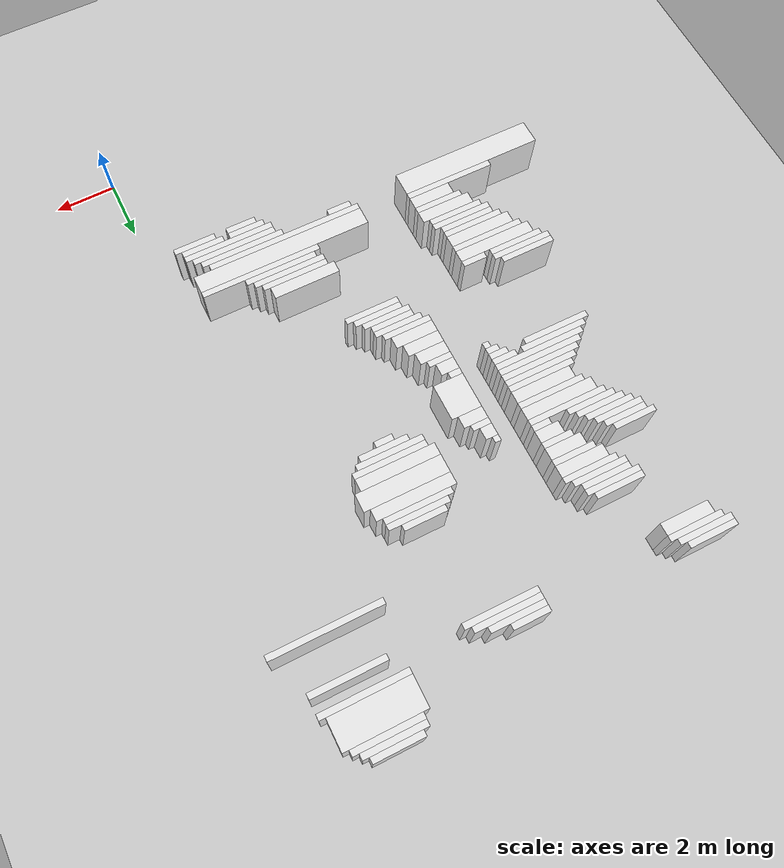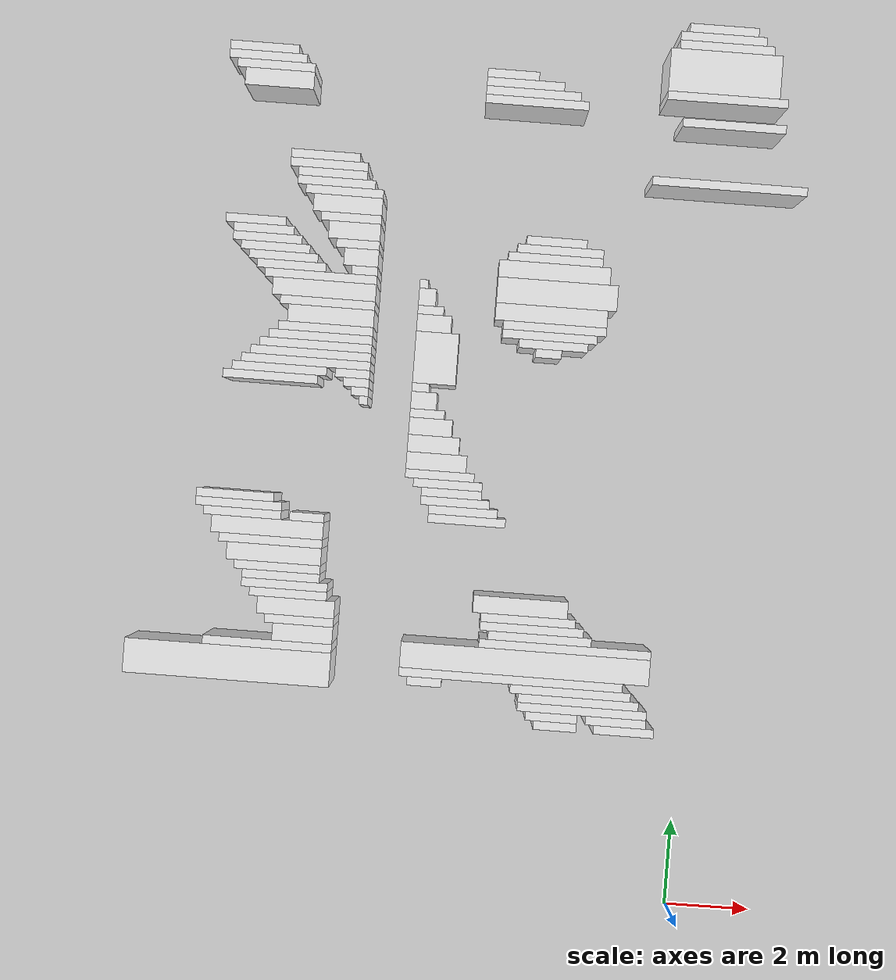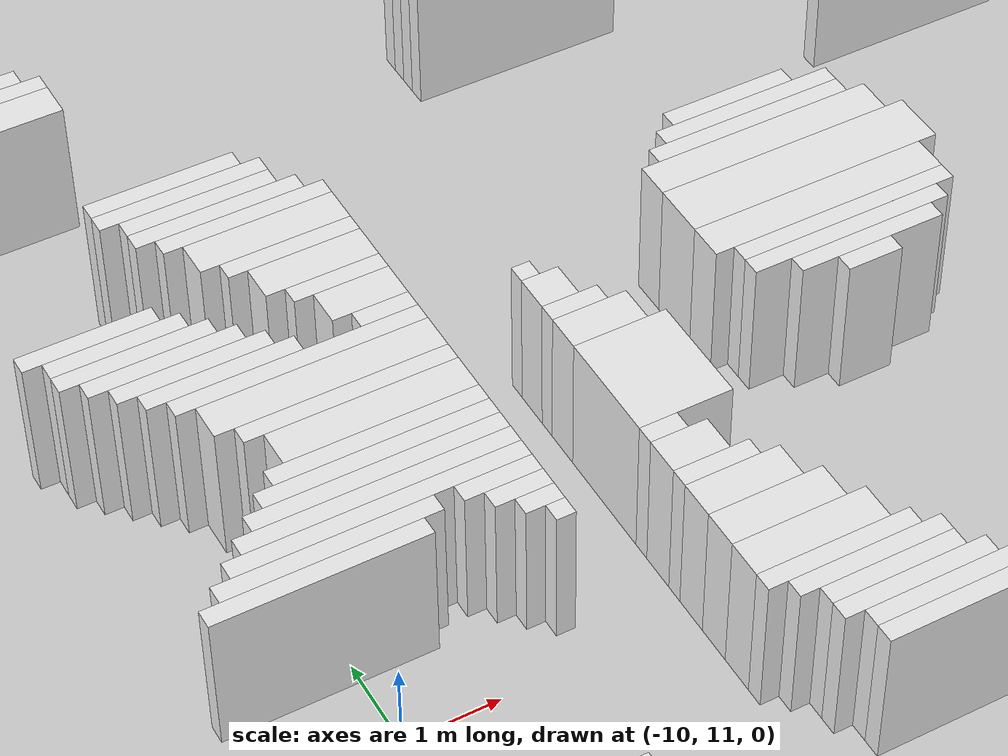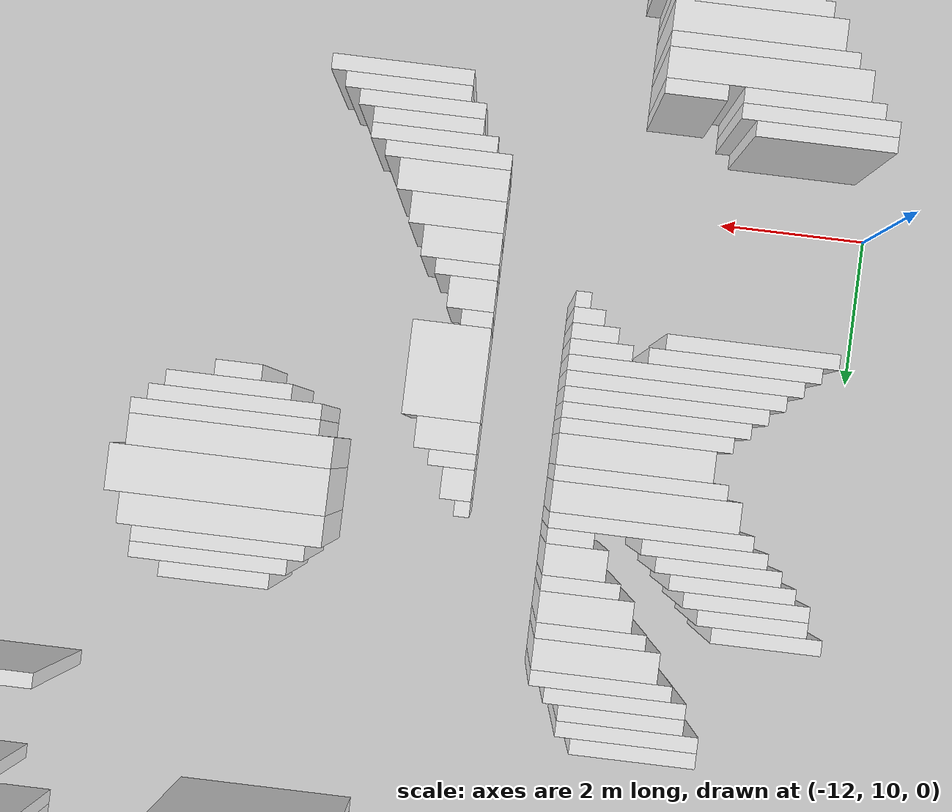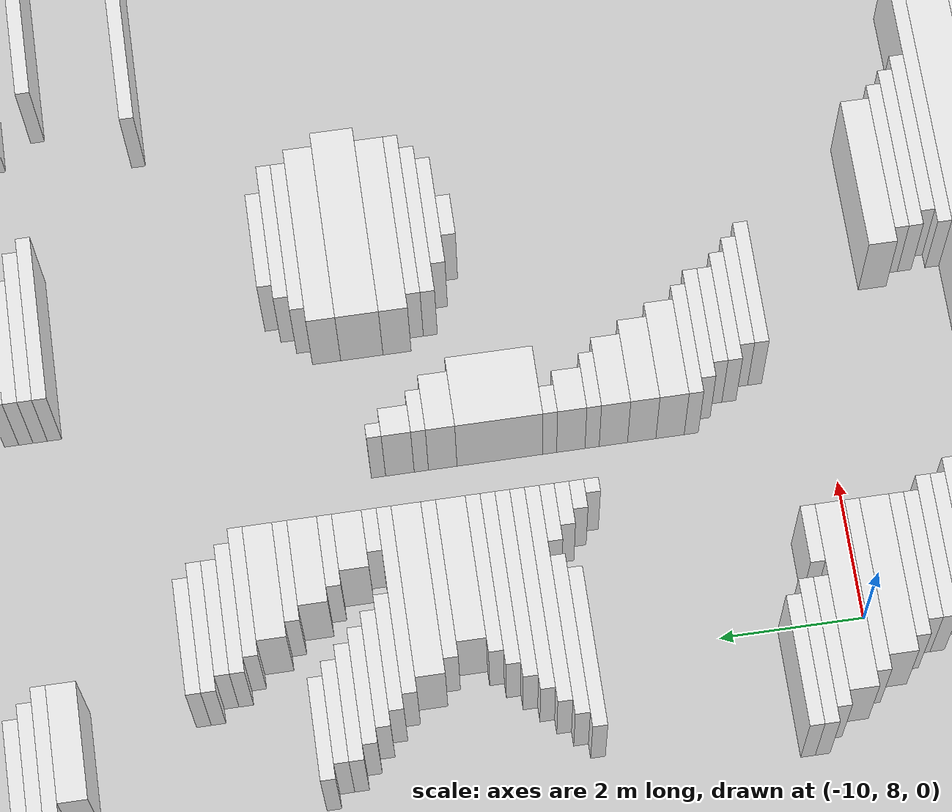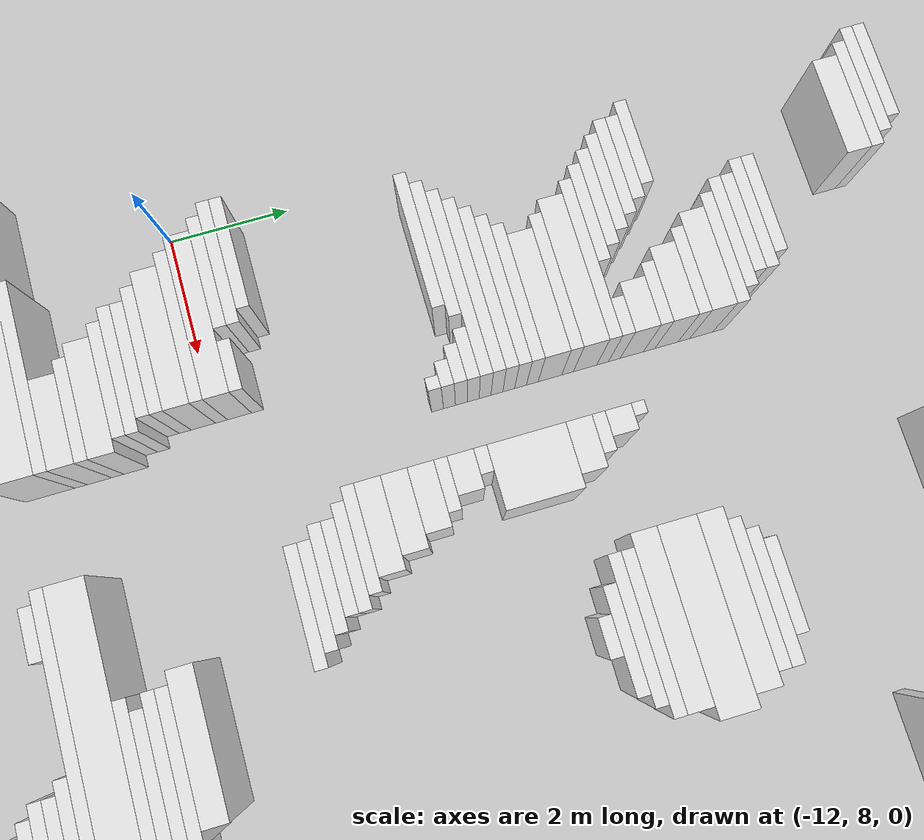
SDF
<sdf version="1.7">
 <world name="default">
  <model name="ground_plane">
   <static>1</static>
   <link name="link">
    <collision name="collision">
     <geometry><plane><normal>0 0 1</normal><size>120 120</size></plane></geometry>
    </collision>
    <visual name="visual">
     <geometry><plane><normal>0 0 1</normal><size>120 120</size></plane></geometry>
     <material>
      <script><uri>file://media/materials/scripts/gazebo.material</uri><name>Gazebo/Grey</name></script>
     </material>
    </visual>
   </link>
  </model>
  <model name="random_complex_02_model">
   <static>1</static>
   <link name="obs_1197">
    <pose>-0.4000 20.7000 0.8000 0 0 0</pose>
    <collision name="obs_1197_col"><geometry><box><size>1.6000 0.2000 1.6000</size></box></geometry></collision>
    <visual name="obs_1197_vis">
     <geometry><box><size>1.6000 0.2000 1.6000</size></box></geometry>
     <material>
      <script><uri>file://media/materials/scripts/gazebo.material</uri><name>Gazebo/White</name></script>
     </material>
    </visual>
   </link>
   <link name="obs_1205">
    <pose>-0.4000 20.5000 0.8000 0 0 0</pose>
    <collision name="obs_1205_col"><geometry><box><size>2.0000 0.2000 1.6000</size></box></geometry></collision>
    <visual name="obs_1205_vis">
     <geometry><box><size>2.0000 0.2000 1.6000</size></box></geometry>
     <material>
      <script><uri>file://media/materials/scripts/gazebo.material</uri><name>Gazebo/White</name></script>
     </material>
    </visual>
   </link>
   <link name="obs_1216">
    <pose>-0.3000 20.3000 0.8000 0 0 0</pose>
    <collision name="obs_1216_col"><geometry><box><size>2.2000 0.2000 1.6000</size></box></geometry></collision>
    <visual name="obs_1216_vis">
     <geometry><box><size>2.2000 0.2000 1.6000</size></box></geometry>
     <material>
      <script><uri>file://media/materials/scripts/gazebo.material</uri><name>Gazebo/White</name></script>
     </material>
    </visual>
   </link>
   <link name="obs_1240">
    <pose>-11.0000 19.5000 0.8000 0 0 0</pose>
    <collision name="obs_1240_col"><geometry><box><size>1.6000 0.2000 1.6000</size></box></geometry></collision>
    <visual name="obs_1240_vis">
     <geometry><box><size>1.6000 0.2000 1.6000</size></box></geometry>
     <material>
      <script><uri>file://media/materials/scripts/gazebo.material</uri><name>Gazebo/White</name></script>
     </material>
    </visual>
   </link>
   <link name="obs_1244">
    <pose>-0.3000 19.7000 0.8000 0 0 0</pose>
    <collision name="obs_1244_col"><geometry><box><size>2.6000 1.0000 1.6000</size></box></geometry></collision>
    <visual name="obs_1244_vis">
     <geometry><box><size>2.6000 1.0000 1.6000</size></box></geometry>
     <material>
      <script><uri>file://media/materials/scripts/gazebo.material</uri><name>Gazebo/White</name></script>
     </material>
    </visual>
   </link>
   <link name="obs_1248">
    <pose>-10.9000 19.3000 0.8000 0 0 0</pose>
    <collision name="obs_1248_col"><geometry><box><size>1.8000 0.2000 1.6000</size></box></geometry></collision>
    <visual name="obs_1248_vis">
     <geometry><box><size>1.8000 0.2000 1.6000</size></box></geometry>
     <material>
      <script><uri>file://media/materials/scripts/gazebo.material</uri><name>Gazebo/White</name></script>
     </material>
    </visual>
   </link>
   <link name="obs_1249">
    <pose>-5.2000 19.3000 0.8000 0 0 0</pose>
    <collision name="obs_1249_col"><geometry><box><size>1.2000 0.2000 1.6000</size></box></geometry></collision>
    <visual name="obs_1249_vis">
     <geometry><box><size>1.2000 0.2000 1.6000</size></box></geometry>
     <material>
      <script><uri>file://media/materials/scripts/gazebo.material</uri><name>Gazebo/White</name></script>
     </material>
    </visual>
   </link>
   <link name="obs_1257">
    <pose>-10.7000 19.1000 0.8000 0 0 0</pose>
    <collision name="obs_1257_col"><geometry><box><size>1.8000 0.2000 1.6000</size></box></geometry></collision>
    <visual name="obs_1257_vis">
     <geometry><box><size>1.8000 0.2000 1.6000</size></box></geometry>
     <material>
      <script><uri>file://media/materials/scripts/gazebo.material</uri><name>Gazebo/White</name></script>
     </material>
    </visual>
   </link>
   <link name="obs_1258">
    <pose>-4.9000 19.1000 0.8000 0 0 0</pose>
    <collision name="obs_1258_col"><geometry><box><size>1.8000 0.2000 1.6000</size></box></geometry></collision>
    <visual name="obs_1258_vis">
     <geometry><box><size>1.8000 0.2000 1.6000</size></box></geometry>
     <material>
      <script><uri>file://media/materials/scripts/gazebo.material</uri><name>Gazebo/White</name></script>
     </material>
    </visual>
   </link>
   <link name="obs_1259">
    <pose>-0.2000 19.1000 0.8000 0 0 0</pose>
    <collision name="obs_1259_col"><geometry><box><size>2.8000 0.2000 1.6000</size></box></geometry></collision>
    <visual name="obs_1259_vis">
     <geometry><box><size>2.8000 0.2000 1.6000</size></box></geometry>
     <material>
      <script><uri>file://media/materials/scripts/gazebo.material</uri><name>Gazebo/White</name></script>
     </material>
    </visual>
   </link>
   <link name="obs_1266">
    <pose>-4.7000 18.9000 0.8000 0 0 0</pose>
    <collision name="obs_1266_col"><geometry><box><size>2.2000 0.2000 1.6000</size></box></geometry></collision>
    <visual name="obs_1266_vis">
     <geometry><box><size>2.2000 0.2000 1.6000</size></box></geometry>
     <material>
      <script><uri>file://media/materials/scripts/gazebo.material</uri><name>Gazebo/White</name></script>
     </material>
    </visual>
   </link>
   <link name="obs_1274">
    <pose>-10.6000 18.8000 0.8000 0 0 0</pose>
    <collision name="obs_1274_col"><geometry><box><size>1.6000 0.4000 1.6000</size></box></geometry></collision>
    <visual name="obs_1274_vis">
     <geometry><box><size>1.6000 0.4000 1.6000</size></box></geometry>
     <material>
      <script><uri>file://media/materials/scripts/gazebo.material</uri><name>Gazebo/White</name></script>
     </material>
    </visual>
   </link>
   <link name="obs_1281">
    <pose>-4.6000 18.7000 0.8000 0 0 0</pose>
    <collision name="obs_1281_col"><geometry><box><size>2.4000 0.2000 1.6000</size></box></geometry></collision>
    <visual name="obs_1281_vis">
     <geometry><box><size>2.4000 0.2000 1.6000</size></box></geometry>
     <material>
      <script><uri>file://media/materials/scripts/gazebo.material</uri><name>Gazebo/White</name></script>
     </material>
    </visual>
   </link>
   <link name="obs_1289">
    <pose>0.0000 18.5000 0.8000 0 0 0</pose>
    <collision name="obs_1289_col"><geometry><box><size>2.4000 0.2000 1.6000</size></box></geometry></collision>
    <visual name="obs_1289_vis">
     <geometry><box><size>2.4000 0.2000 1.6000</size></box></geometry>
     <material>
      <script><uri>file://media/materials/scripts/gazebo.material</uri><name>Gazebo/White</name></script>
     </material>
    </visual>
   </link>
   <link name="obs_1314">
    <pose>-9.4000 17.1000 0.8000 0 0 0</pose>
    <collision name="obs_1314_col"><geometry><box><size>1.6000 0.2000 1.6000</size></box></geometry></collision>
    <visual name="obs_1314_vis">
     <geometry><box><size>1.6000 0.2000 1.6000</size></box></geometry>
     <material>
      <script><uri>file://media/materials/scripts/gazebo.material</uri><name>Gazebo/White</name></script>
     </material>
    </visual>
   </link>
   <link name="obs_1315">
    <pose>0.0000 17.1000 0.8000 0 0 0</pose>
    <collision name="obs_1315_col"><geometry><box><size>3.6000 0.2000 1.6000</size></box></geometry></collision>
    <visual name="obs_1315_vis">
     <geometry><box><size>3.6000 0.2000 1.6000</size></box></geometry>
     <material>
      <script><uri>file://media/materials/scripts/gazebo.material</uri><name>Gazebo/White</name></script>
     </material>
    </visual>
   </link>
   <link name="obs_1322">
    <pose>-9.3000 16.9000 0.8000 0 0 0</pose>
    <collision name="obs_1322_col"><geometry><box><size>1.8000 0.2000 1.6000</size></box></geometry></collision>
    <visual name="obs_1322_vis">
     <geometry><box><size>1.8000 0.2000 1.6000</size></box></geometry>
     <material>
      <script><uri>file://media/materials/scripts/gazebo.material</uri><name>Gazebo/White</name></script>
     </material>
    </visual>
   </link>
   <link name="obs_1329">
    <pose>-9.2000 16.7000 0.8000 0 0 0</pose>
    <collision name="obs_1329_col"><geometry><box><size>1.6000 0.2000 1.6000</size></box></geometry></collision>
    <visual name="obs_1329_vis">
     <geometry><box><size>1.6000 0.2000 1.6000</size></box></geometry>
     <material>
      <script><uri>file://media/materials/scripts/gazebo.material</uri><name>Gazebo/White</name></script>
     </material>
    </visual>
   </link>
   <link name="obs_1336">
    <pose>-9.1000 16.5000 0.8000 0 0 0</pose>
    <collision name="obs_1336_col"><geometry><box><size>1.8000 0.2000 1.6000</size></box></geometry></collision>
    <visual name="obs_1336_vis">
     <geometry><box><size>1.8000 0.2000 1.6000</size></box></geometry>
     <material>
      <script><uri>file://media/materials/scripts/gazebo.material</uri><name>Gazebo/White</name></script>
     </material>
    </visual>
   </link>
   <link name="obs_1342">
    <pose>-8.9000 16.3000 0.8000 0 0 0</pose>
    <collision name="obs_1342_col"><geometry><box><size>1.8000 0.2000 1.6000</size></box></geometry></collision>
    <visual name="obs_1342_vis">
     <geometry><box><size>1.8000 0.2000 1.6000</size></box></geometry>
     <material>
      <script><uri>file://media/materials/scripts/gazebo.material</uri><name>Gazebo/White</name></script>
     </material>
    </visual>
   </link>
   <link name="obs_1351">
    <pose>-8.8000 16.0000 0.8000 0 0 0</pose>
    <collision name="obs_1351_col"><geometry><box><size>1.6000 0.4000 1.6000</size></box></geometry></collision>
    <visual name="obs_1351_vis">
     <geometry><box><size>1.6000 0.4000 1.6000</size></box></geometry>
     <material>
      <script><uri>file://media/materials/scripts/gazebo.material</uri><name>Gazebo/White</name></script>
     </material>
    </visual>
   </link>
   <link name="obs_1360">
    <pose>-8.7000 15.7000 0.8000 0 0 0</pose>
    <collision name="obs_1360_col"><geometry><box><size>1.4000 0.2000 1.6000</size></box></geometry></collision>
    <visual name="obs_1360_vis">
     <geometry><box><size>1.4000 0.2000 1.6000</size></box></geometry>
     <material>
      <script><uri>file://media/materials/scripts/gazebo.material</uri><name>Gazebo/White</name></script>
     </material>
    </visual>
   </link>
   <link name="obs_1365">
    <pose>-10.9000 15.5000 0.8000 0 0 0</pose>
    <collision name="obs_1365_col"><geometry><box><size>1.4000 0.2000 1.6000</size></box></geometry></collision>
    <visual name="obs_1365_vis">
     <geometry><box><size>1.4000 0.2000 1.6000</size></box></geometry>
     <material>
      <script><uri>file://media/materials/scripts/gazebo.material</uri><name>Gazebo/White</name></script>
     </material>
    </visual>
   </link>
   <link name="obs_1366">
    <pose>-3.9000 15.5000 0.8000 0 0 0</pose>
    <collision name="obs_1366_col"><geometry><box><size>1.4000 0.2000 1.6000</size></box></geometry></collision>
    <visual name="obs_1366_vis">
     <geometry><box><size>1.4000 0.2000 1.6000</size></box></geometry>
     <material>
      <script><uri>file://media/materials/scripts/gazebo.material</uri><name>Gazebo/White</name></script>
     </material>
    </visual>
   </link>
   <link name="obs_1368">
    <pose>-8.6000 15.4000 0.8000 0 0 0</pose>
    <collision name="obs_1368_col"><geometry><box><size>1.2000 0.4000 1.6000</size></box></geometry></collision>
    <visual name="obs_1368_vis">
     <geometry><box><size>1.2000 0.4000 1.6000</size></box></geometry>
     <material>
      <script><uri>file://media/materials/scripts/gazebo.material</uri><name>Gazebo/White</name></script>
     </material>
    </visual>
   </link>
   <link name="obs_1372">
    <pose>-10.7000 15.3000 0.8000 0 0 0</pose>
    <collision name="obs_1372_col"><geometry><box><size>1.4000 0.2000 1.6000</size></box></geometry></collision>
    <visual name="obs_1372_vis">
     <geometry><box><size>1.4000 0.2000 1.6000</size></box></geometry>
     <material>
      <script><uri>file://media/materials/scripts/gazebo.material</uri><name>Gazebo/White</name></script>
     </material>
    </visual>
   </link>
   <link name="obs_1373">
    <pose>-3.8000 15.3000 0.8000 0 0 0</pose>
    <collision name="obs_1373_col"><geometry><box><size>2.0000 0.2000 1.6000</size></box></geometry></collision>
    <visual name="obs_1373_vis">
     <geometry><box><size>2.0000 0.2000 1.6000</size></box></geometry>
     <material>
      <script><uri>file://media/materials/scripts/gazebo.material</uri><name>Gazebo/White</name></script>
     </material>
    </visual>
   </link>
   <link name="obs_1376">
    <pose>-10.6000 15.1000 0.8000 0 0 0</pose>
    <collision name="obs_1376_col"><geometry><box><size>1.6000 0.2000 1.6000</size></box></geometry></collision>
    <visual name="obs_1376_vis">
     <geometry><box><size>1.6000 0.2000 1.6000</size></box></geometry>
     <material>
      <script><uri>file://media/materials/scripts/gazebo.material</uri><name>Gazebo/White</name></script>
     </material>
    </visual>
   </link>
   <link name="obs_1377">
    <pose>-8.5000 15.1000 0.8000 0 0 0</pose>
    <collision name="obs_1377_col"><geometry><box><size>1.0000 0.2000 1.6000</size></box></geometry></collision>
    <visual name="obs_1377_vis">
     <geometry><box><size>1.0000 0.2000 1.6000</size></box></geometry>
     <material>
      <script><uri>file://media/materials/scripts/gazebo.material</uri><name>Gazebo/White</name></script>
     </material>
    </visual>
   </link>
   <link name="obs_1378">
    <pose>-3.9000 15.1000 0.8000 0 0 0</pose>
    <collision name="obs_1378_col"><geometry><box><size>2.2000 0.2000 1.6000</size></box></geometry></collision>
    <visual name="obs_1378_vis">
     <geometry><box><size>2.2000 0.2000 1.6000</size></box></geometry>
     <material>
      <script><uri>file://media/materials/scripts/gazebo.material</uri><name>Gazebo/White</name></script>
     </material>
    </visual>
   </link>
   <link name="obs_1384">
    <pose>-10.4000 14.9000 0.8000 0 0 0</pose>
    <collision name="obs_1384_col"><geometry><box><size>1.6000 0.2000 1.6000</size></box></geometry></collision>
    <visual name="obs_1384_vis">
     <geometry><box><size>1.6000 0.2000 1.6000</size></box></geometry>
     <material>
      <script><uri>file://media/materials/scripts/gazebo.material</uri><name>Gazebo/White</name></script>
     </material>
    </visual>
   </link>
   <link name="obs_1386">
    <pose>-8.4000 14.8000 0.8000 0 0 0</pose>
    <collision name="obs_1386_col"><geometry><box><size>0.8000 0.4000 1.6000</size></box></geometry></collision>
    <visual name="obs_1386_vis">
     <geometry><box><size>0.8000 0.4000 1.6000</size></box></geometry>
     <material>
      <script><uri>file://media/materials/scripts/gazebo.material</uri><name>Gazebo/White</name></script>
     </material>
    </visual>
   </link>
   <link name="obs_1387">
    <pose>-3.9000 14.8000 0.8000 0 0 0</pose>
    <collision name="obs_1387_col"><geometry><box><size>2.6000 0.4000 1.6000</size></box></geometry></collision>
    <visual name="obs_1387_vis">
     <geometry><box><size>2.6000 0.4000 1.6000</size></box></geometry>
     <material>
      <script><uri>file://media/materials/scripts/gazebo.material</uri><name>Gazebo/White</name></script>
     </material>
    </visual>
   </link>
   <link name="obs_1390">
    <pose>-10.2000 14.7000 0.8000 0 0 0</pose>
    <collision name="obs_1390_col"><geometry><box><size>1.6000 0.2000 1.6000</size></box></geometry></collision>
    <visual name="obs_1390_vis">
     <geometry><box><size>1.6000 0.2000 1.6000</size></box></geometry>
     <material>
      <script><uri>file://media/materials/scripts/gazebo.material</uri><name>Gazebo/White</name></script>
     </material>
    </visual>
   </link>
   <link name="obs_1395">
    <pose>-10.0000 14.5000 0.8000 0 0 0</pose>
    <collision name="obs_1395_col"><geometry><box><size>1.6000 0.2000 1.6000</size></box></geometry></collision>
    <visual name="obs_1395_vis">
     <geometry><box><size>1.6000 0.2000 1.6000</size></box></geometry>
     <material>
      <script><uri>file://media/materials/scripts/gazebo.material</uri><name>Gazebo/White</name></script>
     </material>
    </visual>
   </link>
   <link name="obs_1396">
    <pose>-8.3000 14.5000 0.8000 0 0 0</pose>
    <collision name="obs_1396_col"><geometry><box><size>0.6000 0.2000 1.6000</size></box></geometry></collision>
    <visual name="obs_1396_vis">
     <geometry><box><size>0.6000 0.2000 1.6000</size></box></geometry>
     <material>
      <script><uri>file://media/materials/scripts/gazebo.material</uri><name>Gazebo/White</name></script>
     </material>
    </visual>
   </link>
   <link name="obs_1403">
    <pose>-9.3000 14.3000 0.8000 0 0 0</pose>
    <collision name="obs_1403_col"><geometry><box><size>2.6000 0.2000 1.6000</size></box></geometry></collision>
    <visual name="obs_1403_vis">
     <geometry><box><size>2.6000 0.2000 1.6000</size></box></geometry>
     <material>
      <script><uri>file://media/materials/scripts/gazebo.material</uri><name>Gazebo/White</name></script>
     </material>
    </visual>
   </link>
   <link name="obs_1404">
    <pose>-6.9000 14.3000 0.8000 0 0 0</pose>
    <collision name="obs_1404_col"><geometry><box><size>0.2000 0.2000 1.6000</size></box></geometry></collision>
    <visual name="obs_1404_vis">
     <geometry><box><size>0.2000 0.2000 1.6000</size></box></geometry>
     <material>
      <script><uri>file://media/materials/scripts/gazebo.material</uri><name>Gazebo/White</name></script>
     </material>
    </visual>
   </link>
   <link name="obs_1407">
    <pose>-3.8000 14.3000 0.8000 0 0 0</pose>
    <collision name="obs_1407_col"><geometry><box><size>2.8000 0.6000 1.6000</size></box></geometry></collision>
    <visual name="obs_1407_vis">
     <geometry><box><size>2.8000 0.6000 1.6000</size></box></geometry>
     <material>
      <script><uri>file://media/materials/scripts/gazebo.material</uri><name>Gazebo/White</name></script>
     </material>
    </visual>
   </link>
   <link name="obs_1414">
    <pose>-9.2000 14.0000 0.8000 0 0 0</pose>
    <collision name="obs_1414_col"><geometry><box><size>2.4000 0.4000 1.6000</size></box></geometry></collision>
    <visual name="obs_1414_vis">
     <geometry><box><size>2.4000 0.4000 1.6000</size></box></geometry>
     <material>
      <script><uri>file://media/materials/scripts/gazebo.material</uri><name>Gazebo/White</name></script>
     </material>
    </visual>
   </link>
   <link name="obs_1415">
    <pose>-6.8000 14.0000 0.8000 0 0 0</pose>
    <collision name="obs_1415_col"><geometry><box><size>0.4000 0.4000 1.6000</size></box></geometry></collision>
    <visual name="obs_1415_vis">
     <geometry><box><size>0.4000 0.4000 1.6000</size></box></geometry>
     <material>
      <script><uri>file://media/materials/scripts/gazebo.material</uri><name>Gazebo/White</name></script>
     </material>
    </visual>
   </link>
   <link name="obs_1420">
    <pose>-3.9000 13.8000 0.8000 0 0 0</pose>
    <collision name="obs_1420_col"><geometry><box><size>2.6000 0.4000 1.6000</size></box></geometry></collision>
    <visual name="obs_1420_vis">
     <geometry><box><size>2.6000 0.4000 1.6000</size></box></geometry>
     <material>
      <script><uri>file://media/materials/scripts/gazebo.material</uri><name>Gazebo/White</name></script>
     </material>
    </visual>
   </link>
   <link name="obs_1423">
    <pose>-9.1000 13.7000 0.8000 0 0 0</pose>
    <collision name="obs_1423_col"><geometry><box><size>2.2000 0.2000 1.6000</size></box></geometry></collision>
    <visual name="obs_1423_vis">
     <geometry><box><size>2.2000 0.2000 1.6000</size></box></geometry>
     <material>
      <script><uri>file://media/materials/scripts/gazebo.material</uri><name>Gazebo/White</name></script>
     </material>
    </visual>
   </link>
   <link name="obs_1424">
    <pose>-6.7000 13.7000 0.8000 0 0 0</pose>
    <collision name="obs_1424_col"><geometry><box><size>0.6000 0.2000 1.6000</size></box></geometry></collision>
    <visual name="obs_1424_vis">
     <geometry><box><size>0.6000 0.2000 1.6000</size></box></geometry>
     <material>
      <script><uri>file://media/materials/scripts/gazebo.material</uri><name>Gazebo/White</name></script>
     </material>
    </visual>
   </link>
   <link name="obs_1430">
    <pose>-3.8000 13.5000 0.8000 0 0 0</pose>
    <collision name="obs_1430_col"><geometry><box><size>2.4000 0.2000 1.6000</size></box></geometry></collision>
    <visual name="obs_1430_vis">
     <geometry><box><size>2.4000 0.2000 1.6000</size></box></geometry>
     <material>
      <script><uri>file://media/materials/scripts/gazebo.material</uri><name>Gazebo/White</name></script>
     </material>
    </visual>
   </link>
   <link name="obs_1432">
    <pose>-9.0000 13.4000 0.8000 0 0 0</pose>
    <collision name="obs_1432_col"><geometry><box><size>2.0000 0.4000 1.6000</size></box></geometry></collision>
    <visual name="obs_1432_vis">
     <geometry><box><size>2.0000 0.4000 1.6000</size></box></geometry>
     <material>
      <script><uri>file://media/materials/scripts/gazebo.material</uri><name>Gazebo/White</name></script>
     </material>
    </visual>
   </link>
   <link name="obs_1433">
    <pose>-6.6000 13.4000 0.8000 0 0 0</pose>
    <collision name="obs_1433_col"><geometry><box><size>0.8000 0.4000 1.6000</size></box></geometry></collision>
    <visual name="obs_1433_vis">
     <geometry><box><size>0.8000 0.4000 1.6000</size></box></geometry>
     <material>
      <script><uri>file://media/materials/scripts/gazebo.material</uri><name>Gazebo/White</name></script>
     </material>
    </visual>
   </link>
   <link name="obs_1437">
    <pose>-3.9000 13.3000 0.8000 0 0 0</pose>
    <collision name="obs_1437_col"><geometry><box><size>2.2000 0.2000 1.6000</size></box></geometry></collision>
    <visual name="obs_1437_vis">
     <geometry><box><size>2.2000 0.2000 1.6000</size></box></geometry>
     <material>
      <script><uri>file://media/materials/scripts/gazebo.material</uri><name>Gazebo/White</name></script>
     </material>
    </visual>
   </link>
   <link name="obs_1440">
    <pose>-9.1000 13.1000 0.8000 0 0 0</pose>
    <collision name="obs_1440_col"><geometry><box><size>2.2000 0.2000 1.6000</size></box></geometry></collision>
    <visual name="obs_1440_vis">
     <geometry><box><size>2.2000 0.2000 1.6000</size></box></geometry>
     <material>
      <script><uri>file://media/materials/scripts/gazebo.material</uri><name>Gazebo/White</name></script>
     </material>
    </visual>
   </link>
   <link name="obs_1441">
    <pose>-3.8000 13.1000 0.8000 0 0 0</pose>
    <collision name="obs_1441_col"><geometry><box><size>1.6000 0.2000 1.6000</size></box></geometry></collision>
    <visual name="obs_1441_vis">
     <geometry><box><size>1.6000 0.2000 1.6000</size></box></geometry>
     <material>
      <script><uri>file://media/materials/scripts/gazebo.material</uri><name>Gazebo/White</name></script>
     </material>
    </visual>
   </link>
   <link name="obs_1446">
    <pose>-9.2000 12.9000 0.8000 0 0 0</pose>
    <collision name="obs_1446_col"><geometry><box><size>2.4000 0.2000 1.6000</size></box></geometry></collision>
    <visual name="obs_1446_vis">
     <geometry><box><size>2.4000 0.2000 1.6000</size></box></geometry>
     <material>
      <script><uri>file://media/materials/scripts/gazebo.material</uri><name>Gazebo/White</name></script>
     </material>
    </visual>
   </link>
   <link name="obs_1447">
    <pose>-3.9000 12.9000 0.8000 0 0 0</pose>
    <collision name="obs_1447_col"><geometry><box><size>0.6000 0.2000 1.6000</size></box></geometry></collision>
    <visual name="obs_1447_vis">
     <geometry><box><size>0.6000 0.2000 1.6000</size></box></geometry>
     <material>
      <script><uri>file://media/materials/scripts/gazebo.material</uri><name>Gazebo/White</name></script>
     </material>
    </visual>
   </link>
   <link name="obs_1450">
    <pose>-9.3000 12.7000 0.8000 0 0 0</pose>
    <collision name="obs_1450_col"><geometry><box><size>2.6000 0.2000 1.6000</size></box></geometry></collision>
    <visual name="obs_1450_vis">
     <geometry><box><size>2.6000 0.2000 1.6000</size></box></geometry>
     <material>
      <script><uri>file://media/materials/scripts/gazebo.material</uri><name>Gazebo/White</name></script>
     </material>
    </visual>
   </link>
   <link name="obs_1456">
    <pose>-9.4000 12.5000 0.8000 0 0 0</pose>
    <collision name="obs_1456_col"><geometry><box><size>2.8000 0.2000 1.6000</size></box></geometry></collision>
    <visual name="obs_1456_vis">
     <geometry><box><size>2.8000 0.2000 1.6000</size></box></geometry>
     <material>
      <script><uri>file://media/materials/scripts/gazebo.material</uri><name>Gazebo/White</name></script>
     </material>
    </visual>
   </link>
   <link name="obs_1462">
    <pose>-9.5000 12.3000 0.8000 0 0 0</pose>
    <collision name="obs_1462_col"><geometry><box><size>3.0000 0.2000 1.6000</size></box></geometry></collision>
    <visual name="obs_1462_vis">
     <geometry><box><size>3.0000 0.2000 1.6000</size></box></geometry>
     <material>
      <script><uri>file://media/materials/scripts/gazebo.material</uri><name>Gazebo/White</name></script>
     </material>
    </visual>
   </link>
   <link name="obs_1466">
    <pose>-6.5000 12.6000 0.8000 0 0 0</pose>
    <collision name="obs_1466_col"><geometry><box><size>1.0000 1.2000 1.6000</size></box></geometry></collision>
    <visual name="obs_1466_vis">
     <geometry><box><size>1.0000 1.2000 1.6000</size></box></geometry>
     <material>
      <script><uri>file://media/materials/scripts/gazebo.material</uri><name>Gazebo/White</name></script>
     </material>
    </visual>
   </link>
   <link name="obs_1470">
    <pose>-10.1000 12.1000 0.8000 0 0 0</pose>
    <collision name="obs_1470_col"><geometry><box><size>2.2000 0.2000 1.6000</size></box></geometry></collision>
    <visual name="obs_1470_vis">
     <geometry><box><size>2.2000 0.2000 1.6000</size></box></geometry>
     <material>
      <script><uri>file://media/materials/scripts/gazebo.material</uri><name>Gazebo/White</name></script>
     </material>
    </visual>
   </link>
   <link name="obs_1471">
    <pose>-8.4000 12.1000 0.8000 0 0 0</pose>
    <collision name="obs_1471_col"><geometry><box><size>0.8000 0.2000 1.6000</size></box></geometry></collision>
    <visual name="obs_1471_vis">
     <geometry><box><size>0.8000 0.2000 1.6000</size></box></geometry>
     <material>
      <script><uri>file://media/materials/scripts/gazebo.material</uri><name>Gazebo/White</name></script>
     </material>
    </visual>
   </link>
   <link name="obs_1480">
    <pose>-10.3000 11.9000 0.8000 0 0 0</pose>
    <collision name="obs_1480_col"><geometry><box><size>2.2000 0.2000 1.6000</size></box></geometry></collision>
    <visual name="obs_1480_vis">
     <geometry><box><size>2.2000 0.2000 1.6000</size></box></geometry>
     <material>
      <script><uri>file://media/materials/scripts/gazebo.material</uri><name>Gazebo/White</name></script>
     </material>
    </visual>
   </link>
   <link name="obs_1481">
    <pose>-8.3000 11.9000 0.8000 0 0 0</pose>
    <collision name="obs_1481_col"><geometry><box><size>0.6000 0.2000 1.6000</size></box></geometry></collision>
    <visual name="obs_1481_vis">
     <geometry><box><size>0.6000 0.2000 1.6000</size></box></geometry>
     <material>
      <script><uri>file://media/materials/scripts/gazebo.material</uri><name>Gazebo/White</name></script>
     </material>
    </visual>
   </link>
   <link name="obs_1482">
    <pose>-6.8000 11.9000 0.8000 0 0 0</pose>
    <collision name="obs_1482_col"><geometry><box><size>0.4000 0.2000 1.6000</size></box></geometry></collision>
    <visual name="obs_1482_vis">
     <geometry><box><size>0.4000 0.2000 1.6000</size></box></geometry>
     <material>
      <script><uri>file://media/materials/scripts/gazebo.material</uri><name>Gazebo/White</name></script>
     </material>
    </visual>
   </link>
   <link name="obs_1488">
    <pose>-8.2000 11.7000 0.8000 0 0 0</pose>
    <collision name="obs_1488_col"><geometry><box><size>0.4000 0.2000 1.6000</size></box></geometry></collision>
    <visual name="obs_1488_vis">
     <geometry><box><size>0.4000 0.2000 1.6000</size></box></geometry>
     <material>
      <script><uri>file://media/materials/scripts/gazebo.material</uri><name>Gazebo/White</name></script>
     </material>
    </visual>
   </link>
   <link name="obs_1491">
    <pose>-6.7000 11.6000 0.8000 0 0 0</pose>
    <collision name="obs_1491_col"><geometry><box><size>0.6000 0.4000 1.6000</size></box></geometry></collision>
    <visual name="obs_1491_vis">
     <geometry><box><size>0.6000 0.4000 1.6000</size></box></geometry>
     <material>
      <script><uri>file://media/materials/scripts/gazebo.material</uri><name>Gazebo/White</name></script>
     </material>
    </visual>
   </link>
   <link name="obs_1495">
    <pose>-8.1000 11.5000 0.8000 0 0 0</pose>
    <collision name="obs_1495_col"><geometry><box><size>0.2000 0.2000 1.6000</size></box></geometry></collision>
    <visual name="obs_1495_vis">
     <geometry><box><size>0.2000 0.2000 1.6000</size></box></geometry>
     <material>
      <script><uri>file://media/materials/scripts/gazebo.material</uri><name>Gazebo/White</name></script>
     </material>
    </visual>
   </link>
   <link name="obs_1498">
    <pose>-6.6000 11.3000 0.8000 0 0 0</pose>
    <collision name="obs_1498_col"><geometry><box><size>0.8000 0.2000 1.6000</size></box></geometry></collision>
    <visual name="obs_1498_vis">
     <geometry><box><size>0.8000 0.2000 1.6000</size></box></geometry>
     <material>
      <script><uri>file://media/materials/scripts/gazebo.material</uri><name>Gazebo/White</name></script>
     </material>
    </visual>
   </link>
   <link name="obs_1506">
    <pose>-6.5000 11.0000 0.8000 0 0 0</pose>
    <collision name="obs_1506_col"><geometry><box><size>1.0000 0.4000 1.6000</size></box></geometry></collision>
    <visual name="obs_1506_vis">
     <geometry><box><size>1.0000 0.4000 1.6000</size></box></geometry>
     <material>
      <script><uri>file://media/materials/scripts/gazebo.material</uri><name>Gazebo/White</name></script>
     </material>
    </visual>
   </link>
   <link name="obs_1516">
    <pose>-6.4000 10.6000 0.8000 0 0 0</pose>
    <collision name="obs_1516_col"><geometry><box><size>1.2000 0.4000 1.6000</size></box></geometry></collision>
    <visual name="obs_1516_vis">
     <geometry><box><size>1.2000 0.4000 1.6000</size></box></geometry>
     <material>
      <script><uri>file://media/materials/scripts/gazebo.material</uri><name>Gazebo/White</name></script>
     </material>
    </visual>
   </link>
   <link name="obs_1532">
    <pose>-6.3000 10.2000 0.8000 0 0 0</pose>
    <collision name="obs_1532_col"><geometry><box><size>1.4000 0.4000 1.6000</size></box></geometry></collision>
    <visual name="obs_1532_vis">
     <geometry><box><size>1.4000 0.4000 1.6000</size></box></geometry>
     <material>
      <script><uri>file://media/materials/scripts/gazebo.material</uri><name>Gazebo/White</name></script>
     </material>
    </visual>
   </link>
   <link name="obs_1543">
    <pose>-6.2000 9.9000 0.8000 0 0 0</pose>
    <collision name="obs_1543_col"><geometry><box><size>1.6000 0.2000 1.6000</size></box></geometry></collision>
    <visual name="obs_1543_vis">
     <geometry><box><size>1.6000 0.2000 1.6000</size></box></geometry>
     <material>
      <script><uri>file://media/materials/scripts/gazebo.material</uri><name>Gazebo/White</name></script>
     </material>
    </visual>
   </link>
   <link name="obs_1553">
    <pose>-6.0000 9.7000 0.8000 0 0 0</pose>
    <collision name="obs_1553_col"><geometry><box><size>1.6000 0.2000 1.6000</size></box></geometry></collision>
    <visual name="obs_1553_vis">
     <geometry><box><size>1.6000 0.2000 1.6000</size></box></geometry>
     <material>
      <script><uri>file://media/materials/scripts/gazebo.material</uri><name>Gazebo/White</name></script>
     </material>
    </visual>
   </link>
   <link name="obs_1562">
    <pose>-5.9000 9.5000 0.8000 0 0 0</pose>
    <collision name="obs_1562_col"><geometry><box><size>1.4000 0.2000 1.6000</size></box></geometry></collision>
    <visual name="obs_1562_vis">
     <geometry><box><size>1.4000 0.2000 1.6000</size></box></geometry>
     <material>
      <script><uri>file://media/materials/scripts/gazebo.material</uri><name>Gazebo/White</name></script>
     </material>
    </visual>
   </link>
   <link name="obs_1570">
    <pose>-5.8000 9.3000 0.8000 0 0 0</pose>
    <collision name="obs_1570_col"><geometry><box><size>1.6000 0.2000 1.6000</size></box></geometry></collision>
    <visual name="obs_1570_vis">
     <geometry><box><size>1.6000 0.2000 1.6000</size></box></geometry>
     <material>
      <script><uri>file://media/materials/scripts/gazebo.material</uri><name>Gazebo/White</name></script>
     </material>
    </visual>
   </link>
   <link name="obs_1580">
    <pose>-10.9000 9.1000 0.8000 0 0 0</pose>
    <collision name="obs_1580_col"><geometry><box><size>1.8000 0.2000 1.6000</size></box></geometry></collision>
    <visual name="obs_1580_vis">
     <geometry><box><size>1.8000 0.2000 1.6000</size></box></geometry>
     <material>
      <script><uri>file://media/materials/scripts/gazebo.material</uri><name>Gazebo/White</name></script>
     </material>
    </visual>
   </link>
   <link name="obs_1581">
    <pose>-5.6000 9.1000 0.8000 0 0 0</pose>
    <collision name="obs_1581_col"><geometry><box><size>1.6000 0.2000 1.6000</size></box></geometry></collision>
    <visual name="obs_1581_vis">
     <geometry><box><size>1.6000 0.2000 1.6000</size></box></geometry>
     <material>
      <script><uri>file://media/materials/scripts/gazebo.material</uri><name>Gazebo/White</name></script>
     </material>
    </visual>
   </link>
   <link name="obs_1590">
    <pose>-10.8000 8.9000 0.8000 0 0 0</pose>
    <collision name="obs_1590_col"><geometry><box><size>2.0000 0.2000 1.6000</size></box></geometry></collision>
    <visual name="obs_1590_vis">
     <geometry><box><size>2.0000 0.2000 1.6000</size></box></geometry>
     <material>
      <script><uri>file://media/materials/scripts/gazebo.material</uri><name>Gazebo/White</name></script>
     </material>
    </visual>
   </link>
   <link name="obs_1591">
    <pose>-5.5000 8.9000 0.8000 0 0 0</pose>
    <collision name="obs_1591_col"><geometry><box><size>1.8000 0.2000 1.6000</size></box></geometry></collision>
    <visual name="obs_1591_vis">
     <geometry><box><size>1.8000 0.2000 1.6000</size></box></geometry>
     <material>
      <script><uri>file://media/materials/scripts/gazebo.material</uri><name>Gazebo/White</name></script>
     </material>
    </visual>
   </link>
   <link name="obs_1600">
    <pose>-10.7000 8.7000 0.8000 0 0 0</pose>
    <collision name="obs_1600_col"><geometry><box><size>1.8000 0.2000 1.6000</size></box></geometry></collision>
    <visual name="obs_1600_vis">
     <geometry><box><size>1.8000 0.2000 1.6000</size></box></geometry>
     <material>
      <script><uri>file://media/materials/scripts/gazebo.material</uri><name>Gazebo/White</name></script>
     </material>
    </visual>
   </link>
   <link name="obs_1601">
    <pose>-9.2000 8.7000 0.8000 0 0 0</pose>
    <collision name="obs_1601_col"><geometry><box><size>0.8000 0.2000 1.6000</size></box></geometry></collision>
    <visual name="obs_1601_vis">
     <geometry><box><size>0.8000 0.2000 1.6000</size></box></geometry>
     <material>
      <script><uri>file://media/materials/scripts/gazebo.material</uri><name>Gazebo/White</name></script>
     </material>
    </visual>
   </link>
   <link name="obs_1613">
    <pose>-10.1000 8.4000 0.8000 0 0 0</pose>
    <collision name="obs_1613_col"><geometry><box><size>2.6000 0.4000 1.6000</size></box></geometry></collision>
    <visual name="obs_1613_vis">
     <geometry><box><size>2.6000 0.4000 1.6000</size></box></geometry>
     <material>
      <script><uri>file://media/materials/scripts/gazebo.material</uri><name>Gazebo/White</name></script>
     </material>
    </visual>
   </link>
   <link name="obs_1626">
    <pose>-10.0000 8.1000 0.8000 0 0 0</pose>
    <collision name="obs_1626_col"><geometry><box><size>2.4000 0.2000 1.6000</size></box></geometry></collision>
    <visual name="obs_1626_vis">
     <geometry><box><size>2.4000 0.2000 1.6000</size></box></geometry>
     <material>
      <script><uri>file://media/materials/scripts/gazebo.material</uri><name>Gazebo/White</name></script>
     </material>
    </visual>
   </link>
   <link name="obs_1639">
    <pose>-9.9000 7.8000 0.8000 0 0 0</pose>
    <collision name="obs_1639_col"><geometry><box><size>2.2000 0.4000 1.6000</size></box></geometry></collision>
    <visual name="obs_1639_vis">
     <geometry><box><size>2.2000 0.4000 1.6000</size></box></geometry>
     <material>
      <script><uri>file://media/materials/scripts/gazebo.material</uri><name>Gazebo/White</name></script>
     </material>
    </visual>
   </link>
   <link name="obs_1648">
    <pose>-9.8000 7.5000 0.8000 0 0 0</pose>
    <collision name="obs_1648_col"><geometry><box><size>2.0000 0.2000 1.6000</size></box></geometry></collision>
    <visual name="obs_1648_vis">
     <geometry><box><size>2.0000 0.2000 1.6000</size></box></geometry>
     <material>
      <script><uri>file://media/materials/scripts/gazebo.material</uri><name>Gazebo/White</name></script>
     </material>
    </visual>
   </link>
   <link name="obs_1653">
    <pose>-9.7000 7.3000 0.8000 0 0 0</pose>
    <collision name="obs_1653_col"><geometry><box><size>1.8000 0.2000 1.6000</size></box></geometry></collision>
    <visual name="obs_1653_vis">
     <geometry><box><size>1.8000 0.2000 1.6000</size></box></geometry>
     <material>
      <script><uri>file://media/materials/scripts/gazebo.material</uri><name>Gazebo/White</name></script>
     </material>
    </visual>
   </link>
   <link name="obs_1657">
    <pose>-9.6000 7.1000 0.8000 0 0 0</pose>
    <collision name="obs_1657_col"><geometry><box><size>2.0000 0.2000 1.6000</size></box></geometry></collision>
    <visual name="obs_1657_vis">
     <geometry><box><size>2.0000 0.2000 1.6000</size></box></geometry>
     <material>
      <script><uri>file://media/materials/scripts/gazebo.material</uri><name>Gazebo/White</name></script>
     </material>
    </visual>
   </link>
   <link name="obs_1661">
    <pose>-4.1000 7.0000 0.8000 0 0 0</pose>
    <collision name="obs_1661_col"><geometry><box><size>2.2000 0.4000 1.6000</size></box></geometry></collision>
    <visual name="obs_1661_vis">
     <geometry><box><size>2.2000 0.4000 1.6000</size></box></geometry>
     <material>
      <script><uri>file://media/materials/scripts/gazebo.material</uri><name>Gazebo/White</name></script>
     </material>
    </visual>
   </link>
   <link name="obs_1664">
    <pose>-9.5000 6.9000 0.8000 0 0 0</pose>
    <collision name="obs_1664_col"><geometry><box><size>1.8000 0.2000 1.6000</size></box></geometry></collision>
    <visual name="obs_1664_vis">
     <geometry><box><size>1.8000 0.2000 1.6000</size></box></geometry>
     <material>
      <script><uri>file://media/materials/scripts/gazebo.material</uri><name>Gazebo/White</name></script>
     </material>
    </visual>
   </link>
   <link name="obs_1672">
    <pose>-3.9000 6.7000 0.8000 0 0 0</pose>
    <collision name="obs_1672_col"><geometry><box><size>2.2000 0.2000 1.6000</size></box></geometry></collision>
    <visual name="obs_1672_vis">
     <geometry><box><size>2.2000 0.2000 1.6000</size></box></geometry>
     <material>
      <script><uri>file://media/materials/scripts/gazebo.material</uri><name>Gazebo/White</name></script>
     </material>
    </visual>
   </link>
   <link name="obs_1677">
    <pose>-9.3000 6.6000 0.8000 0 0 0</pose>
    <collision name="obs_1677_col"><geometry><box><size>1.8000 0.4000 1.6000</size></box></geometry></collision>
    <visual name="obs_1677_vis">
     <geometry><box><size>1.8000 0.4000 1.6000</size></box></geometry>
     <material>
      <script><uri>file://media/materials/scripts/gazebo.material</uri><name>Gazebo/White</name></script>
     </material>
    </visual>
   </link>
   <link name="obs_1682">
    <pose>-3.8000 6.5000 0.8000 0 0 0</pose>
    <collision name="obs_1682_col"><geometry><box><size>2.4000 0.2000 1.6000</size></box></geometry></collision>
    <visual name="obs_1682_vis">
     <geometry><box><size>2.4000 0.2000 1.6000</size></box></geometry>
     <material>
      <script><uri>file://media/materials/scripts/gazebo.material</uri><name>Gazebo/White</name></script>
     </material>
    </visual>
   </link>
   <link name="obs_1687">
    <pose>-9.2000 6.3000 0.8000 0 0 0</pose>
    <collision name="obs_1687_col"><geometry><box><size>1.6000 0.2000 1.6000</size></box></geometry></collision>
    <visual name="obs_1687_vis">
     <geometry><box><size>1.6000 0.2000 1.6000</size></box></geometry>
     <material>
      <script><uri>file://media/materials/scripts/gazebo.material</uri><name>Gazebo/White</name></script>
     </material>
    </visual>
   </link>
   <link name="obs_1688">
    <pose>-3.6000 6.3000 0.8000 0 0 0</pose>
    <collision name="obs_1688_col"><geometry><box><size>2.4000 0.2000 1.6000</size></box></geometry></collision>
    <visual name="obs_1688_vis">
     <geometry><box><size>2.4000 0.2000 1.6000</size></box></geometry>
     <material>
      <script><uri>file://media/materials/scripts/gazebo.material</uri><name>Gazebo/White</name></script>
     </material>
    </visual>
   </link>
   <link name="obs_1694">
    <pose>-3.0000 6.1000 0.8000 0 0 0</pose>
    <collision name="obs_1694_col"><geometry><box><size>4.0000 0.2000 1.6000</size></box></geometry></collision>
    <visual name="obs_1694_vis">
     <geometry><box><size>4.0000 0.2000 1.6000</size></box></geometry>
     <material>
      <script><uri>file://media/materials/scripts/gazebo.material</uri><name>Gazebo/White</name></script>
     </material>
    </visual>
   </link>
   <link name="obs_1698">
    <pose>-9.1000 6.0000 0.8000 0 0 0</pose>
    <collision name="obs_1698_col"><geometry><box><size>1.4000 0.4000 1.6000</size></box></geometry></collision>
    <visual name="obs_1698_vis">
     <geometry><box><size>1.4000 0.4000 1.6000</size></box></geometry>
     <material>
      <script><uri>file://media/materials/scripts/gazebo.material</uri><name>Gazebo/White</name></script>
     </material>
    </visual>
   </link>
   <link name="obs_1708">
    <pose>-9.9000 5.7000 0.8000 0 0 0</pose>
    <collision name="obs_1708_col"><geometry><box><size>3.0000 0.2000 1.6000</size></box></geometry></collision>
    <visual name="obs_1708_vis">
     <geometry><box><size>3.0000 0.2000 1.6000</size></box></geometry>
     <material>
      <script><uri>file://media/materials/scripts/gazebo.material</uri><name>Gazebo/White</name></script>
     </material>
    </visual>
   </link>
   <link name="obs_1714">
    <pose>-3.9000 5.7000 0.8000 0 0 0</pose>
    <collision name="obs_1714_col"><geometry><box><size>5.8000 0.6000 1.6000</size></box></geometry></collision>
    <visual name="obs_1714_vis">
     <geometry><box><size>5.8000 0.6000 1.6000</size></box></geometry>
     <material>
      <script><uri>file://media/materials/scripts/gazebo.material</uri><name>Gazebo/White</name></script>
     </material>
    </visual>
   </link>
   <link name="obs_1728">
    <pose>-4.2000 5.3000 0.8000 0 0 0</pose>
    <collision name="obs_1728_col"><geometry><box><size>5.2000 0.2000 1.6000</size></box></geometry></collision>
    <visual name="obs_1728_vis">
     <geometry><box><size>5.2000 0.2000 1.6000</size></box></geometry>
     <material>
      <script><uri>file://media/materials/scripts/gazebo.material</uri><name>Gazebo/White</name></script>
     </material>
    </visual>
   </link>
   <link name="obs_1741">
    <pose>-6.2000 5.1000 0.8000 0 0 0</pose>
    <collision name="obs_1741_col"><geometry><box><size>0.8000 0.2000 1.6000</size></box></geometry></collision>
    <visual name="obs_1741_vis">
     <geometry><box><size>0.8000 0.2000 1.6000</size></box></geometry>
     <material>
      <script><uri>file://media/materials/scripts/gazebo.material</uri><name>Gazebo/White</name></script>
     </material>
    </visual>
   </link>
   <link name="obs_1742">
    <pose>-2.8000 5.1000 0.8000 0 0 0</pose>
    <collision name="obs_1742_col"><geometry><box><size>2.8000 0.2000 1.6000</size></box></geometry></collision>
    <visual name="obs_1742_vis">
     <geometry><box><size>2.8000 0.2000 1.6000</size></box></geometry>
     <material>
      <script><uri>file://media/materials/scripts/gazebo.material</uri><name>Gazebo/White</name></script>
     </material>
    </visual>
   </link>
   <link name="obs_1747">
    <pose>-10.8000 5.2000 0.8000 0 0 0</pose>
    <collision name="obs_1747_col"><geometry><box><size>4.8000 0.8000 1.6000</size></box></geometry></collision>
    <visual name="obs_1747_vis">
     <geometry><box><size>4.8000 0.8000 1.6000</size></box></geometry>
     <material>
      <script><uri>file://media/materials/scripts/gazebo.material</uri><name>Gazebo/White</name></script>
     </material>
    </visual>
   </link>
   <link name="obs_1750">
    <pose>-2.6000 4.9000 0.8000 0 0 0</pose>
    <collision name="obs_1750_col"><geometry><box><size>2.8000 0.2000 1.6000</size></box></geometry></collision>
    <visual name="obs_1750_vis">
     <geometry><box><size>2.8000 0.2000 1.6000</size></box></geometry>
     <material>
      <script><uri>file://media/materials/scripts/gazebo.material</uri><name>Gazebo/White</name></script>
     </material>
    </visual>
   </link>
   <link name="obs_1758">
    <pose>-2.5000 4.7000 0.8000 0 0 0</pose>
    <collision name="obs_1758_col"><geometry><box><size>3.0000 0.2000 1.6000</size></box></geometry></collision>
    <visual name="obs_1758_vis">
     <geometry><box><size>3.0000 0.2000 1.6000</size></box></geometry>
     <material>
      <script><uri>file://media/materials/scripts/gazebo.material</uri><name>Gazebo/White</name></script>
     </material>
    </visual>
   </link>
   <link name="obs_1764">
    <pose>-3.2000 4.5000 0.8000 0 0 0</pose>
    <collision name="obs_1764_col"><geometry><box><size>1.2000 0.2000 1.6000</size></box></geometry></collision>
    <visual name="obs_1764_vis">
     <geometry><box><size>1.2000 0.2000 1.6000</size></box></geometry>
     <material>
      <script><uri>file://media/materials/scripts/gazebo.material</uri><name>Gazebo/White</name></script>
     </material>
    </visual>
   </link>
   <link name="obs_1765">
    <pose>-1.7000 4.5000 0.8000 0 0 0</pose>
    <collision name="obs_1765_col"><geometry><box><size>1.4000 0.2000 1.6000</size></box></geometry></collision>
    <visual name="obs_1765_vis">
     <geometry><box><size>1.4000 0.2000 1.6000</size></box></geometry>
     <material>
      <script><uri>file://media/materials/scripts/gazebo.material</uri><name>Gazebo/White</name></script>
     </material>
    </visual>
   </link>
   <link name="obs_1775">
    <pose>-3.1000 4.3000 0.8000 0 0 0</pose>
    <collision name="obs_1775_col"><geometry><box><size>1.0000 0.2000 1.6000</size></box></geometry></collision>
    <visual name="obs_1775_vis">
     <geometry><box><size>1.0000 0.2000 1.6000</size></box></geometry>
     <material>
      <script><uri>file://media/materials/scripts/gazebo.material</uri><name>Gazebo/White</name></script>
     </material>
    </visual>
   </link>
   <link name="obs_1776">
    <pose>-1.5000 4.3000 0.8000 0 0 0</pose>
    <collision name="obs_1776_col"><geometry><box><size>1.4000 0.2000 1.6000</size></box></geometry></collision>
    <visual name="obs_1776_vis">
     <geometry><box><size>1.4000 0.2000 1.6000</size></box></geometry>
     <material>
      <script><uri>file://media/materials/scripts/gazebo.material</uri><name>Gazebo/White</name></script>
     </material>
    </visual>
   </link>
  </model>
 </world>
</sdf>
